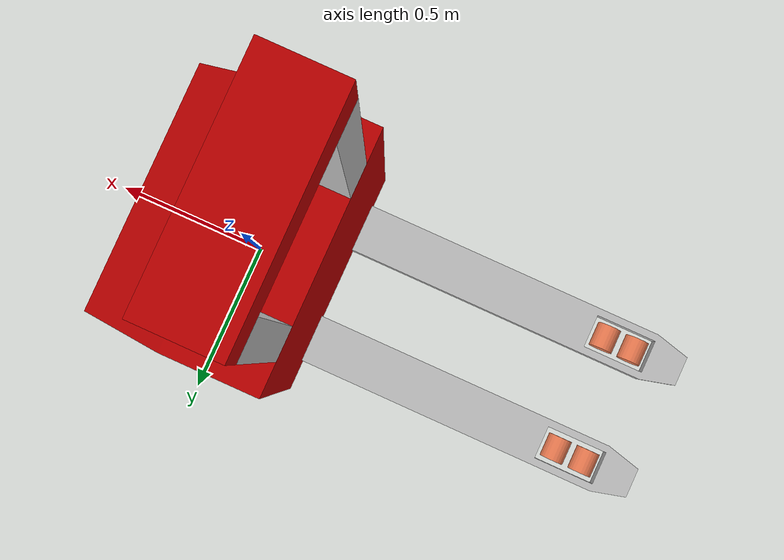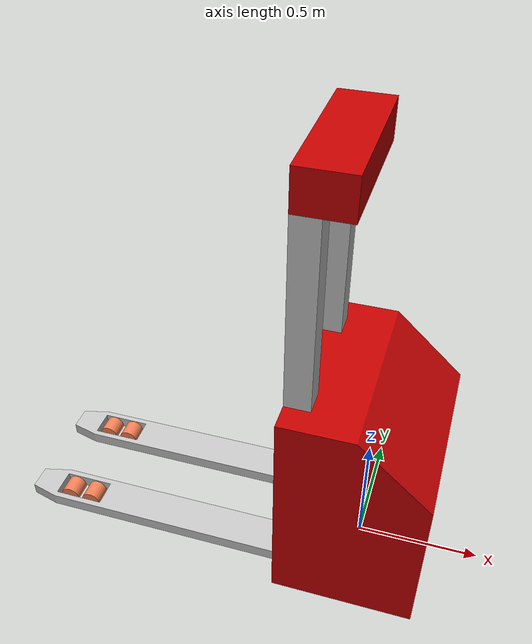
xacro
<?xml version="1.0"?>
<robot xmlns:xacro="http://www.ros.org/wiki/xacro" name="pallet">

<!--    Макрос для расчета инерции простых фигур-->
    <xacro:include filename="inertial_macros.xacro"/>

                     <!-- Параметризация модели -->

<!--    Корпус робота был сделан в Autocad. Куб 100х100х100-->

    <!--Вилы сделаны в автокаде размеры 1000х100х100-->

                            <!--Корпус-->
    <xacro:property name="L" value="0.57"/>  <!--Длина корпуса-->
    <xacro:property name="B" value="0.767"/> <!--Ширина корпуса-->
    <xacro:property name="H" value="0.9"/> <!--Высота корпуса-->
    <xacro:property name="M" value="100"/> <!--Maсса корпуса-->

                            <!--Опоры-->
    <xacro:property name="Lo" value="0.1"/> <!--Длина стороны опоры-->
    <xacro:property name="Ho" value="0.75"/>  <!--Высота опор-->
    <xacro:property name="Mo" value="3"/> <!--Maсса опоры-->

                        <!--Верхний блок-->
    <xacro:property name="Lb" value="0.2"/> <!--Длина верхнего блока-->
    <xacro:property name="Bb" value="0.56"/> <!--Ширина корпуса-->
    <xacro:property name="Hb" value="0.15"/>  <!--Высота верхнего блока-->
    <xacro:property name="Mb" value="10"/> <!--Maсса верхнего блока-->

                            <!--Вилы-->
    <xacro:property name="Lv" value="1.15"/> <!--Длина вил-->
    <xacro:property name="Bv" value="0.16"/> <!--Ширина вил-->
    <xacro:property name="Hv" value="0.05"/>  <!--Высота вил-->
    <xacro:property name="Mv" value="10"/> <!--Maсса вил-->

                        <!--Мотор-колесо УТОЧНИТЬ ШИРИНУ-->
    <xacro:property name="Dn" value="0.21"/> <!--Диаметр мотор-колеса-->
    <xacro:property name="Bn" value="0.12"/> <!--Ширина колеса-->
    <xacro:property name="Ln" value="0.236"/> <!--Отступ мотор-колеса от корпуса-->
    <xacro:property name="Mn" value="5"/> <!--Maсса мотор-колеса-->

    <!--Привод поворота - формальный блок для работы модели в симуляторе-->
    <xacro:property name="Dp" value="0.21"/> <!--Диаметр-->
    <xacro:property name="Lp" value="0.05"/> <!--Длина-->
    <xacro:property name="Mp" value="3"/> <!--Maсса-->

                        <!--Опорные колеса УТОЧНИТЬ ШИРИНУ-->
    <xacro:property name="Dk" value="0.08"/> <!--Диаметр-->
    <xacro:property name="Bk" value="0.08"/> <!--Ширина колеса-->
    <xacro:property name="Lk" value="1.285"/> <!--Расстояние до мотор-колеса-->
    <xacro:property name="Bkk" value="0.4"/> <!--Расстояние между колесами-->
    <xacro:property name="Lkk" value="0.1"/> <!--Отступ между колесами-->
    <xacro:property name="Mk" value="1"/> <!--Maсса колеса-->

                            <!--Трение колес-->
    <xacro:property name="Mu1n" value="0.9"/> <!--Трение основного колеса-->
    <xacro:property name="Mu2n" value="0.9"/>
    <xacro:property name="Mu1k" value="0.3"/> <!--Трение дополнительных колес-->
    <xacro:property name="Mu2k" value="0.6"/>

<!--    Покраска робота в RViz-->
    <material name="red">
        <color rgba="0.77 0 0 1"/>
    </material>
    <material name="gray">
        <color rgba="0.77 0.77 0.77 1"/>
    </material>
    <material name="orange">
        <color rgba="0.96 0.5 0.33 1"/>
    </material>

                            <!--МОДЕЛЬ-->

    <!-- BASE LINK -->
    <link name="base_link">
    </link>

             <!-- Корпус робота -->

    <joint name="body_joint" type="fixed">
        <parent link="base_link"/>
        <child link="body_link"/>
        <origin xyz="0 0 0"/>
    </joint>

    <link name="body_link">
        <visual>
            <origin xyz="${-L/2} ${B/2} 0" rpy=" 0 0 ${-pi/2} "/>
            <geometry>
                 <mesh filename="file://$(find sm_robotics)/description/meshes/pallet_body.stl" scale="${B/100} ${L/100} ${H/100}" />
            </geometry>
            <material name="red"/>
        </visual>
        <collision>
            <origin xyz="${-L/2} ${B/2} 0" rpy="  0 0 ${-pi/2} "/>
            <geometry>
                <mesh filename="file://$(find sm_robotics)/description/meshes/pallet_body.stl" scale="${B/100} ${L/100} ${H/100}" />
            </geometry> <!-- Корпус робота -->
        </collision>
        <xacro:inertial_box mass="${M}" x="${L}" y="${B}" z="${H}">
            <origin xyz="0 0 ${H/2}" rpy="0 0 0"/>
        </xacro:inertial_box>
    </link>

    <gazebo reference="body_link">
        <material>Gazebo/Red</material>
        <mu1 value="0.001"/>
        <mu2 value="0.001"/>
    </gazebo>

                <!--Привод поворота-->

    <joint name="steering_joint" type="continuous">
        <parent link="base_link"/>
        <child link="steering_link"/>
        <origin xyz="${L/2-Ln} 0 ${Dn/2}" rpy="0 0 0"/>
        <axis xyz="0 0 1"/>
    </joint>

    <link name="steering_link">
<!--        пустой объект, без которого не работает модель в газебо-->
        <visual>
            <origin xyz="0 0 ${Dn/2+0.05}" rpy=" 0 0 0 "/>
            <geometry>
                <cylinder radius="${Dp/2}" length="${Lp}"/>
            </geometry>
            <material name="gray"/>
        </visual>

        <collision>
            <origin xyz="0 0 ${Dn/2+0.05}" rpy=" 0 0 0 "/>
            <geometry>
                <cylinder radius="${Dp/2}" length="${Lp}"/>
            </geometry>
        </collision>

        <xacro:inertial_cylinder mass="${Mp}" length="${Lp}" radius="${Dp/2}">
            <origin xyz="0 0 ${Dn/2+0.05}" rpy="0 0 0"/>
        </xacro:inertial_cylinder>
    </link>

            <!--    Мотор-колесо-->

    <joint name="drive_wheel_joint" type="continuous">
        <parent link="steering_link"/>
        <child link="drive_wheel_link"/>
        <origin xyz="0 0 0" rpy="-${pi/2} 0 0"/>
        <axis xyz="0 0 1"/>
    </joint>

    <link name="drive_wheel_link">
        <visual>
            <origin xyz="0 0 0" rpy=" 0 0 0 "/>
            <geometry>
                <cylinder radius="${Dn/2}" length="${Bn}"/>
            </geometry>
            <material name="gray"/>
        </visual>

        <collision>
            <origin xyz="0 0 0" rpy=" 0 0 0 "/>
            <geometry>
                <cylinder radius="${Dn/2}" length="${Bn}"/>
            </geometry>
        </collision>

        <xacro:inertial_cylinder mass="${Mn}" length="${Bn}" radius="${Dn/2}">
            <origin xyz="0 0 0" rpy="0 0 0"/>
        </xacro:inertial_cylinder>
    </link>

    <gazebo reference="drive_wheel_link">
        <material>Gazebo/Orange</material>
        <mu1 value="${Mu1n}"/>
        <mu2 value="${Mu2n}"/>
    </gazebo>

                        <!--Опоры-->

                    <!--Правая-->
    <joint name="right_support_joint" type="fixed">
        <parent link="body_link"/>
        <child link="right_support_link"/>
        <origin xyz="-${L/2-Lo/2} ${Bb/2-Lo/2} ${H+Ho/2}" rpy="0 0 0"/>
    </joint>

        <link name="right_support_link">
        <visual>
            <geometry>
                <box size="${Lo} ${Lo} ${Ho}" />
            </geometry>
            <material name="gray"/>
        </visual>

        <collision>
            <origin xyz="0 0 0" rpy=" 0 0 0 "/>
            <geometry>
                 <box size="${Lo} ${Lo} ${Ho}"/>
            </geometry>
        </collision>
        <xacro:inertial_box mass="${Mo}" x="${Lo}" y="${Lo}" z="${Ho}">
            <origin xyz="0 0 0" rpy="0 0 0"/>
        </xacro:inertial_box>
    </link>

                    <!--Левая-->
    <joint name="left_support_joint" type="fixed">
        <parent link="body_link"/>
        <child link="left_support_link"/>
        <origin xyz="-${L/2-Lo/2} -${Bb/2-Lo/2} ${H+Ho/2}" rpy="0 0 0"/>
    </joint>

        <link name="left_support_link">
        <visual>
            <geometry>
                <box size="${Lo} ${Lo} ${Ho}" />
            </geometry>
            <material name="gray"/>
        </visual>

        <collision>
            <origin xyz="0 0 0" rpy=" 0 0 0 "/>
            <geometry>
                 <box size="${Lo} ${Lo} ${Ho}"/>
            </geometry>
        </collision>
        <xacro:inertial_box mass="${Mo}" x="${Lo}" y="${Lo}" z="${Ho}">
            <origin xyz="0 0 0" rpy="0 0 0"/>
        </xacro:inertial_box>
    </link>

                        <!--Верхний блок-->

    <joint name="top_block_joint" type="fixed">
        <parent link="body_link"/>
        <child link="top_block_link"/>
        <origin xyz="-${L/2-Lb/2} 0 ${H+Ho+Hb/2}" rpy="0 0 0"/>
    </joint>

        <link name="top_block_link">
        <visual>
            <geometry>
                <box size="${Lb} ${Bb} ${Hb}" />
            </geometry>
            <material name="red"/>
        </visual>

        <collision>
            <origin xyz="0 0 0" rpy=" 0 0 0 "/>
            <geometry>
                 <box size="${Lb} ${Bb} ${Hb}"/>
            </geometry>
        </collision>
        <xacro:inertial_box mass="${Mb}" x="${Lb}" y="${Bb}" z="${Hb}">
            <origin xyz="0 0 0" rpy="0 0 0"/>
        </xacro:inertial_box>
    </link>

    <gazebo reference="top_block_link">
        <material>Gazebo/Red</material>
    </gazebo>

                     <!--  Вилы -->

                       <!--Справа-->

    <joint name="right_fork_joint" type="fixed">
        <parent link="base_link"/>
        <child link="right_fork_link"/>
        <origin xyz="-${L/2} ${Bkk/2+Bv/2} ${Dk/2-Hv/2}" rpy="0 0 -${pi}"/>
    </joint>

        <link name="right_fork_link">
        <visual>
            <geometry>
<!--Модель сделана в автокаде размеры 1000х100х100-->
                <mesh filename="file://$(find sm_robotics)/description/meshes/fork.stl" scale="${Lv/1000} ${Bv/100} ${Hv/100}" />
            </geometry>
            <material name="gray"/>
        </visual>

        <collision>
            <origin xyz="0 0 0" rpy="0 0 0"/>
            <geometry>
                <mesh filename="file://$(find sm_robotics)/description/meshes/fork.stl" scale="${Lv/1000} ${Bv/100} ${Hv/100}" />
            </geometry>
        </collision>
        <xacro:inertial_box mass="${Mv}" x="${Lv}" y="${Bv}" z="${Hv}">
            <origin xyz="${Lv/2} ${Bv/2} ${Hv/2}" rpy="0 0 0"/>
        </xacro:inertial_box>
    </link>

                <!--Слева-->
    <joint name="left_fork_joint" type="fixed">
        <parent link="right_fork_link"/>
        <child link="left_fork_link"/>
        <origin xyz="0 ${Bkk} 0"/>
    </joint>

        <link name="left_fork_link">
        <visual>
            <geometry>
                <mesh filename="file://$(find sm_robotics)/description/meshes/fork.stl" scale="${Lv/1000} ${Bv/100} ${Hv/100}" />
            </geometry>
            <material name="gray"/>
        </visual>

        <collision>
            <origin xyz="0 0 0" rpy="0 0 0"/>
            <geometry>
                <mesh filename="file://$(find sm_robotics)/description/meshes/fork.stl" scale="${Lv/1000} ${Bv/100} ${Hv/100}" />
            </geometry>
        </collision>
        <xacro:inertial_box mass="${Mv}" x="${Lv}" y="${Bv}" z="${Hv}">
            <origin xyz="${Lv/2} ${Bv/2} ${Hv/2}" rpy="0 0 0"/>
        </xacro:inertial_box>
    </link>

        <!--Вспомогательные колеса-->

                    <!--Справа-->
     <joint name="first_right_joint" type="continuous">
        <parent link="body_link"/>
        <child link="first_right_link"/>
        <origin xyz="-${Lk+Ln-L/2+Dk/2-0.01} ${Bkk/2} ${Dk/2}" rpy="${-pi/2} 0 0"/>
        <axis xyz="0 0 1"/>
    </joint>

    <link name="first_right_link">
        <visual>
            <origin xyz="0 0 0" rpy=" 0 0 0 "/>
            <geometry>
                <cylinder radius="${Dk/2}" length="${Bk}"/>
            </geometry>
            <material name="orange"/>
        </visual>

        <collision>
            <origin xyz="0 0 0" rpy=" 0 0 0 "/>
            <geometry>
                <cylinder radius="${Dk/2}" length="${Bk}"/>
            </geometry>
        </collision>

        <xacro:inertial_cylinder mass="${Mk}" length="${Bk}" radius="${Dk/2}">
            <origin xyz="0 0 0" rpy="0 0 0"/>
        </xacro:inertial_cylinder>
    </link>

        <joint name="second_right_joint" type="continuous">
        <parent link="body_link"/>
        <child link="second_right_link"/>
        <origin xyz="-${Lk+Ln-L/2-Dk+0.01} ${Bkk/2} ${Dk/2}" rpy="${-pi/2} 0 0"/>
        <axis xyz="0 0 1"/>
    </joint>

    <link name="second_right_link">
        <visual>
            <origin xyz="0 0 0" rpy=" 0 0 0 "/>
            <geometry>
                <cylinder radius="${Dk/2}" length="${Bk}"/>
            </geometry>
            <material name="orange"/>
        </visual>

        <collision>
            <origin xyz="0 0 0" rpy=" 0 0 0 "/>
            <geometry>
                <cylinder radius="${Dk/2}" length="${Bk}"/>
            </geometry>
        </collision>

        <xacro:inertial_cylinder mass="${Mk}" length="${Bk}" radius="${Dk/2}">
            <origin xyz="0 0 0" rpy="0 0 0"/>
        </xacro:inertial_cylinder>
    </link>

                     <!--Слева-->
     <joint name="first_left_joint" type="continuous">
        <parent link="body_link"/>
        <child link="first_left_link"/>
        <origin xyz="-${Lk+Ln-L/2+Dk/2-0.01} -${Bkk/2} ${Dk/2}" rpy="${-pi/2} 0 0"/>
        <axis xyz="0 0 1"/>
    </joint>

    <link name="first_left_link">
        <visual>
            <origin xyz="0 0 0" rpy=" 0 0 0 "/>
            <geometry>
                <cylinder radius="${Dk/2}" length="${Bk}"/>
            </geometry>
            <material name="orange"/>
        </visual>

        <collision>
            <origin xyz="0 0 0" rpy=" 0 0 0 "/>
            <geometry>
                <cylinder radius="${Dk/2}" length="${Bk}"/>
            </geometry>
        </collision>

        <xacro:inertial_cylinder mass="${Mk}" length="${Bk}" radius="${Dk/2}">
            <origin xyz="0 0 0" rpy="0 0 0"/>
        </xacro:inertial_cylinder>
    </link>

        <joint name="second_left_joint" type="continuous">
        <parent link="body_link"/>
        <child link="second_left_link"/>
        <origin xyz="-${Lk+Ln-L/2-Dk+0.01} -${Bkk/2} ${Dk/2}" rpy="${-pi/2} 0 0"/>
        <axis xyz="0 0 1"/>
    </joint>

    <link name="second_left_link">
        <visual>
            <origin xyz="0 0 0" rpy=" 0 0 0 "/>
            <geometry>
                <cylinder radius="${Dk/2}" length="${Bk}"/>
            </geometry>
            <material name="orange"/>
        </visual>

        <collision>
            <origin xyz="0 0 0" rpy=" 0 0 0 "/>
            <geometry>
                <cylinder radius="${Dk/2}" length="${Bk}"/>
            </geometry>
        </collision>

        <xacro:inertial_cylinder mass="${Mk}" length="${Bk}" radius="${Dk/2}">
            <origin xyz="0 0 0" rpy="0 0 0"/>
        </xacro:inertial_cylinder>
    </link>

    <gazebo reference="first_right_link">
        <material>Gazebo/Orange</material>
        <mu1 value="${Mu1k}"/>
        <mu2 value="${Mu2k}"/>
    </gazebo>
    <gazebo reference="second_right_link">
        <material>Gazebo/Orange</material>
        <mu1 value="${Mu1k}"/>
        <mu2 value="${Mu2k}"/>
    </gazebo>

    <gazebo reference="first_left_link">
        <material>Gazebo/Orange</material>
        <mu1 value="${Mu1k}"/>
        <mu2 value="${Mu2k}"/>
    </gazebo>
    <gazebo reference="second_left_link">
        <material>Gazebo/Orange</material>
        <mu1 value="${Mu1k}"/>
        <mu2 value="${Mu2k}"/>
    </gazebo>

                <!--    Gazebo position-->
    <gazebo>
        <plugin name="libgazebo_ros_p3d" filename="libgazebo_ros_p3d.so">
            <ros>
               <remapping>odom:=gazebo_odom</remapping>
            </ros>
            <frame_name>robot_pose</frame_name>
            <body_name>base_link</body_name>
            <update_rate>50.0</update_rate>
            <gaussian_noise>0.01</gaussian_noise>
        </plugin>
      </gazebo>

 </robot>

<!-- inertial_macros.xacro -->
<robot xmlns:xacro="http://www.ros.org/wiki/xacro" >

    <!-- Specify some standard inertial calculations https://en.wikipedia.org/wiki/List_of_moments_of_inertia -->
    <!-- These make use of xacro's mathematical functionality -->

    <xacro:macro name="inertial_sphere" params="mass radius *origin">
        <inertial>
            <xacro:insert_block name="origin"/>
            <mass value="${mass}" />
            <inertia ixx="${(2/5) * mass * (radius*radius)}" ixy="0.0" ixz="0.0"
                    iyy="${(2/5) * mass * (radius*radius)}" iyz="0.0"
                    izz="${(2/5) * mass * (radius*radius)}" />
        </inertial>
    </xacro:macro>

    <xacro:macro name="inertial_box" params="mass x y z *origin">
        <inertial>
            <xacro:insert_block name="origin"/>
            <mass value="${mass}" />
            <inertia ixx="${(1/12) * mass * (y*y+z*z)}" ixy="0.0" ixz="0.0"
                    iyy="${(1/12) * mass * (x*x+z*z)}" iyz="0.0"
                    izz="${(1/12) * mass * (x*x+y*y)}" />
        </inertial>
    </xacro:macro>

    <xacro:macro name="inertial_cylinder" params="mass length radius *origin">
        <inertial>
            <xacro:insert_block name="origin"/>
            <mass value="${mass}" />
            <inertia ixx="${(1/12) * mass * (3*radius*radius + length*length)}" ixy="0.0" ixz="0.0"
                    iyy="${(1/12) * mass * (3*radius*radius + length*length)}" iyz="0.0"
                    izz="${(1/2) * mass * (radius*radius)}" />
        </inertial>
    </xacro:macro>

<!--    COLORS FOR GAZEBO-->

</robot>
